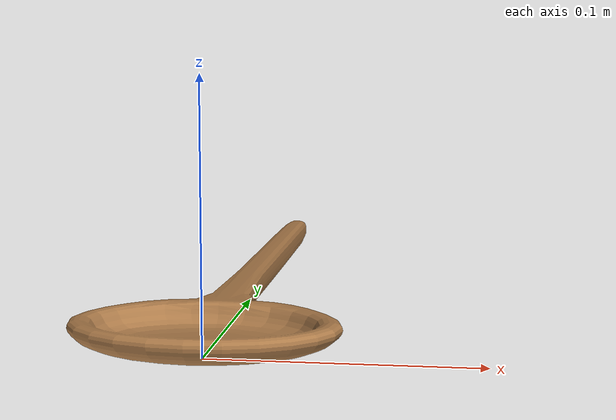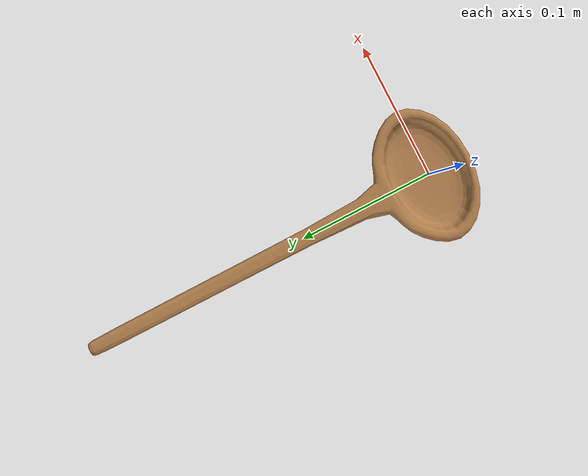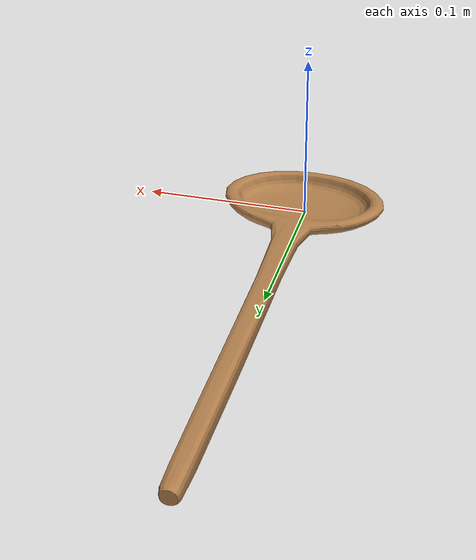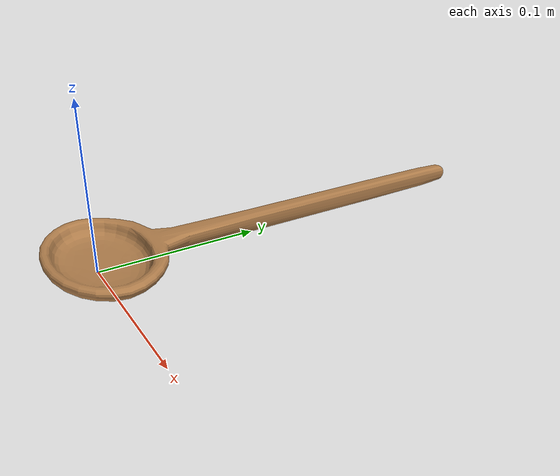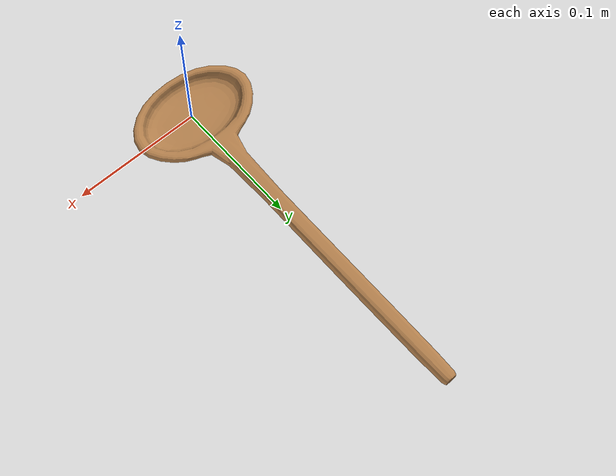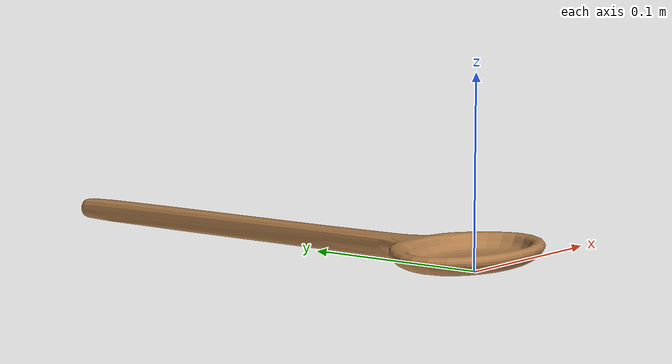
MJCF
<mujoco model="spoon">
  <asset>
  <texture file="meshes/wood.png" name="tex-wood" type="2d" />
  <material name="wood" reflectance="0.5" texrepeat="1 1" texture="tex-wood" texuniform="false" />
  <mesh file="./wooden_spoon.stl" name="spoon" scale="0.04 0.02 0.02" /></asset>
  <worldbody>
    <body>
      <body name="object">
      <geom solimp="0.998 0.998 0.001" solref="0.001 1" density="100" friction="2.5 2.5 0.2" type="mesh" mesh="spoon" conaffinity="0" contype="1" group="1" material="wood" />
      <geom solimp="0.998 0.998 0.001" solref="0.001 1" density="100" friction="2.5 2.5 0.2" type="mesh" mesh="spoon" pos="0.00000 0.00000 -0.00000" size="1 1.02 1.02" group="0" rgba="0.8 0.8 0.8 0." /></body>
      <site rgba="0 0 0 0" size="0.005" pos="0 0 -0.02" name="bottom_site" />
      <site rgba="0 0 0 0" size="0.005" pos="0 0 0.02" name="top_site" />
      <site rgba="0 0 0 0" size="0.005" pos="0.02 0.02 0" name="horizontal_radius_site" />
    </body>
  </worldbody>
</mujoco>
